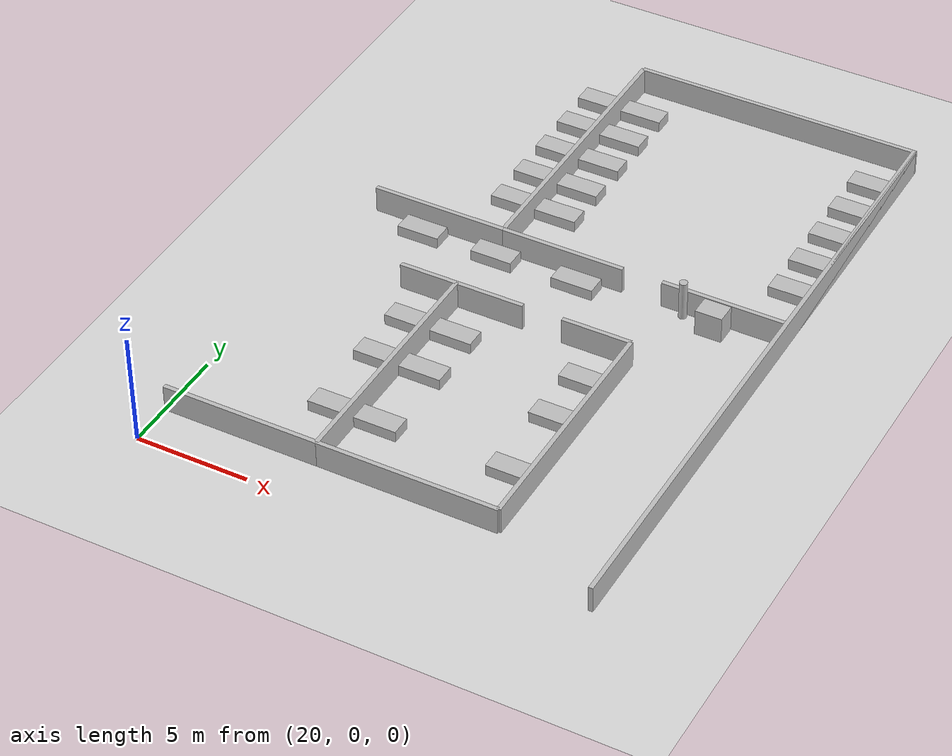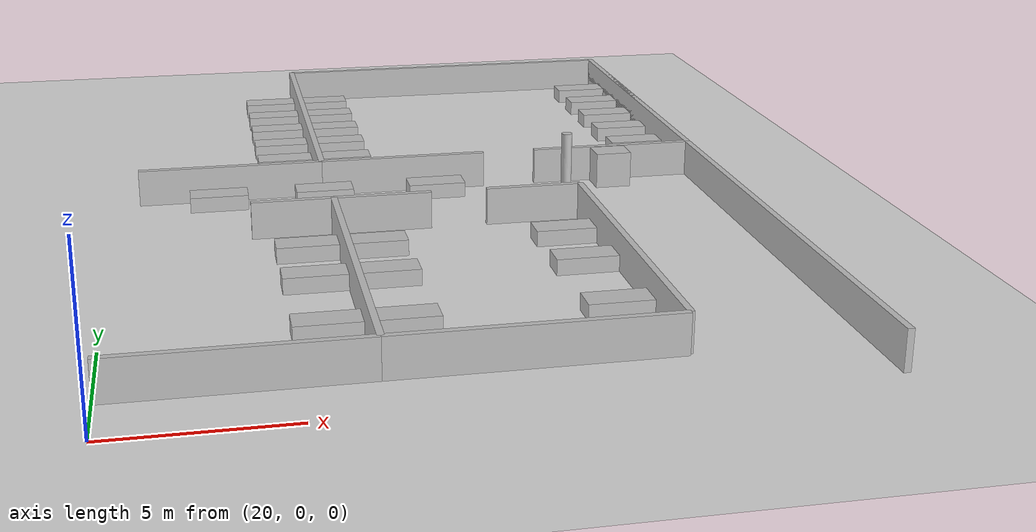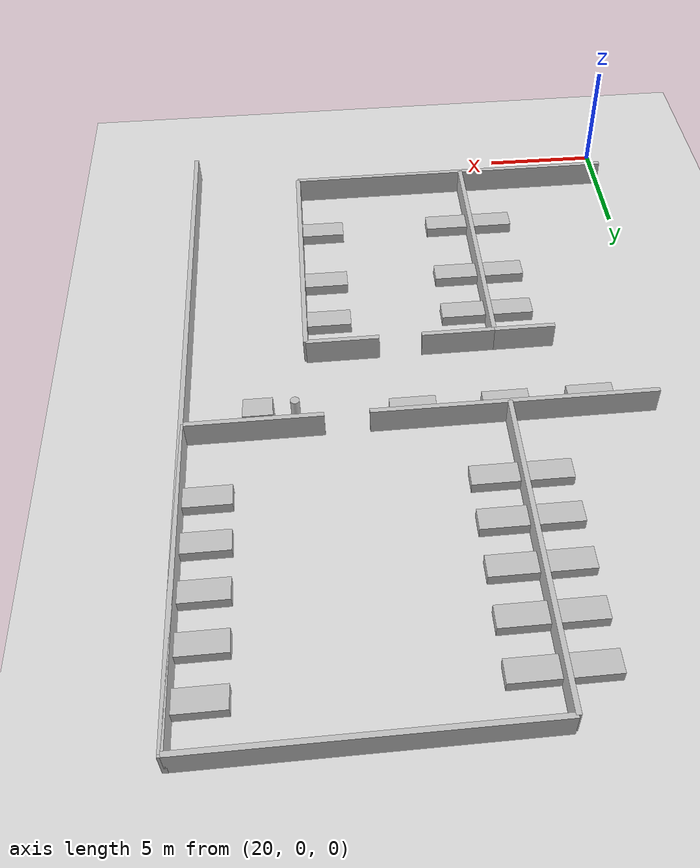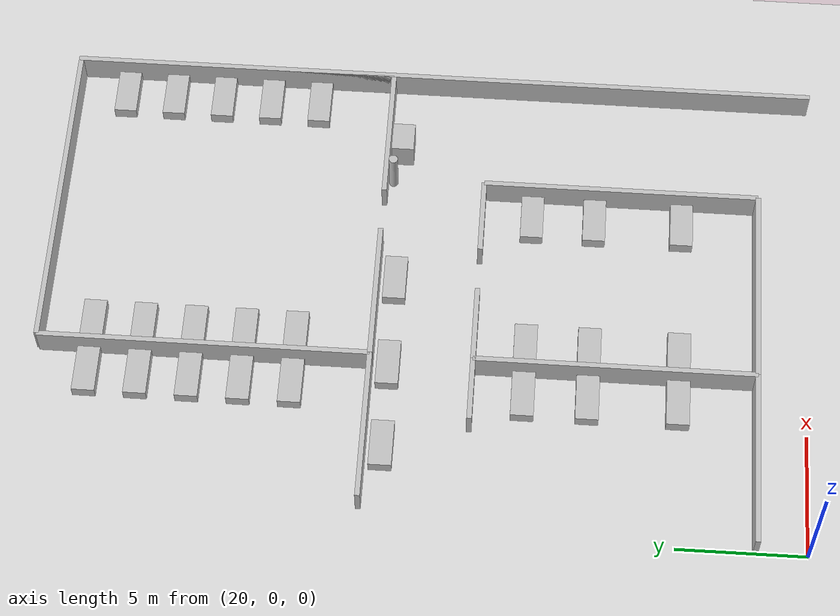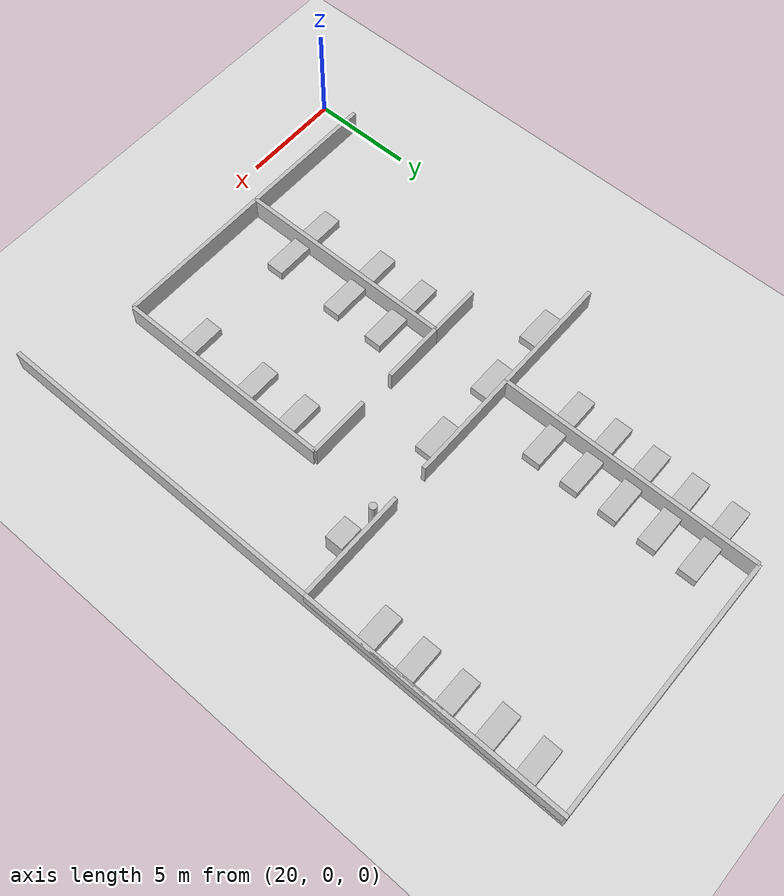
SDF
<sdf version="1.9">
 <world name="hospital">
  <model name="ground_plane">
   <static>true</static>
   <link name="link">
    <collision name="collision">
     <geometry><plane><normal>0 0 1</normal><size>200 200</size></plane></geometry>
    </collision>
    <visual name="visual">
     <pose>0 0 -0.03 0 0 0</pose>
     <cast_shadows>false</cast_shadows>
     <geometry><plane><normal>0 0 1</normal><size>200 200</size></plane></geometry>
     <material>
      <ambient>0.425 0.425 0.425 1.0</ambient>
      <diffuse>0.850 0.850 0.850 1.0</diffuse>
      <specular>0.14 0.14 0.14 1</specular>
      <emissive>0.000 0.000 0.000 1</emissive>
     </material>
    </visual>
   </link>
  </model>
  <model name="wall_3">
   <static>true</static>
   <pose>40.0 15.0 0.6 0 0 0</pose>
   <link name="link">
    <collision name="c">
     <geometry><box><size>0.20000000000000284 30.200000000000003 1.2</size></box></geometry>
    </collision>
    <visual name="v">
     <geometry><box><size>0.20000000000000284 30.200000000000003 1.2</size></box></geometry>
     <material>
      <ambient>0.375 0.375 0.375 1.0</ambient>
      <diffuse>0.750 0.750 0.750 1.0</diffuse>
      <specular>0.14 0.14 0.14 1</specular>
      <emissive>0.000 0.000 0.000 1</emissive>
     </material>
    </visual>
   </link>
  </model>
  <model name="wall_10">
   <static>true</static>
   <pose>23.95 17.0 0.6 0 0 0</pose>
   <link name="link">
    <collision name="c">
     <geometry><box><size>6.100000000000001 0.20000000000000284 1.2</size></box></geometry>
    </collision>
    <visual name="v">
     <geometry><box><size>6.100000000000001 0.20000000000000284 1.2</size></box></geometry>
     <material>
      <ambient>0.375 0.375 0.375 1.0</ambient>
      <diffuse>0.750 0.750 0.750 1.0</diffuse>
      <specular>0.14 0.14 0.14 1</specular>
      <emissive>0.000 0.000 0.000 1</emissive>
     </material>
    </visual>
   </link>
  </model>
  <model name="wall_13">
   <static>true</static>
   <pose>27.0 23.5 0.6 0 0 0</pose>
   <link name="link">
    <collision name="c"><geometry><box><size>0.20000000000000284 13.0 1.2</size></box></geometry></collision>
    <visual name="v">
     <geometry><box><size>0.20000000000000284 13.0 1.2</size></box></geometry>
     <material>
      <ambient>0.375 0.375 0.375 1.0</ambient>
      <diffuse>0.750 0.750 0.750 1.0</diffuse>
      <specular>0.14 0.14 0.14 1</specular>
      <emissive>0.000 0.000 0.000 1</emissive>
     </material>
    </visual>
   </link>
  </model>
  <model name="wall_14">
   <static>true</static>
   <pose>29.8 17.0 0.6 0 0 0</pose>
   <link name="link">
    <collision name="c">
     <geometry><box><size>5.600000000000001 0.20000000000000284 1.2</size></box></geometry>
    </collision>
    <visual name="v">
     <geometry><box><size>5.600000000000001 0.20000000000000284 1.2</size></box></geometry>
     <material>
      <ambient>0.375 0.375 0.375 1.0</ambient>
      <diffuse>0.750 0.750 0.750 1.0</diffuse>
      <specular>0.14 0.14 0.14 1</specular>
      <emissive>0.000 0.000 0.000 1</emissive>
     </material>
    </visual>
   </link>
  </model>
  <model name="wall_15">
   <static>true</static>
   <pose>37.2 17.0 0.6 0 0 0</pose>
   <link name="link">
    <collision name="c">
     <geometry><box><size>5.600000000000001 0.20000000000000284 1.2</size></box></geometry>
    </collision>
    <visual name="v">
     <geometry><box><size>5.600000000000001 0.20000000000000284 1.2</size></box></geometry>
     <material>
      <ambient>0.375 0.375 0.375 1.0</ambient>
      <diffuse>0.750 0.750 0.750 1.0</diffuse>
      <specular>0.14 0.14 0.14 1</specular>
      <emissive>0.000 0.000 0.000 1</emissive>
     </material>
    </visual>
   </link>
  </model>
  <model name="wall_16">
   <static>true</static>
   <pose>33.5 30.0 0.6 0 0 0</pose>
   <link name="link">
    <collision name="c"><geometry><box><size>13.0 0.20000000000000284 1.2</size></box></geometry></collision>
    <visual name="v">
     <geometry><box><size>13.0 0.20000000000000284 1.2</size></box></geometry>
     <material>
      <ambient>0.375 0.375 0.375 1.0</ambient>
      <diffuse>0.750 0.750 0.750 1.0</diffuse>
      <specular>0.14 0.14 0.14 1</specular>
      <emissive>0.000 0.000 0.000 1</emissive>
     </material>
    </visual>
   </link>
  </model>
  <model name="wall_17">
   <static>true</static>
   <pose>27.0 23.5 0.6 0 0 0</pose>
   <link name="link">
    <collision name="c"><geometry><box><size>0.20000000000000284 13.0 1.2</size></box></geometry></collision>
    <visual name="v">
     <geometry><box><size>0.20000000000000284 13.0 1.2</size></box></geometry>
     <material>
      <ambient>0.375 0.375 0.375 1.0</ambient>
      <diffuse>0.750 0.750 0.750 1.0</diffuse>
      <specular>0.14 0.14 0.14 1</specular>
      <emissive>0.000 0.000 0.000 1</emissive>
     </material>
    </visual>
   </link>
  </model>
  <model name="wall_18">
   <static>true</static>
   <pose>40.0 23.5 0.6 0 0 0</pose>
   <link name="link">
    <collision name="c"><geometry><box><size>0.20000000000000284 13.0 1.2</size></box></geometry></collision>
    <visual name="v">
     <geometry><box><size>0.20000000000000284 13.0 1.2</size></box></geometry>
     <material>
      <ambient>0.375 0.375 0.375 1.0</ambient>
      <diffuse>0.750 0.750 0.750 1.0</diffuse>
      <specular>0.14 0.14 0.14 1</specular>
      <emissive>0.000 0.000 0.000 1</emissive>
     </material>
    </visual>
   </link>
  </model>
  <model name="wall_30">
   <static>true</static>
   <pose>23.5 2.0 0.6 0 0 0</pose>
   <link name="link">
    <collision name="c"><geometry><box><size>7.0 0.20000000000000018 1.2</size></box></geometry></collision>
    <visual name="v">
     <geometry><box><size>7.0 0.20000000000000018 1.2</size></box></geometry>
     <material>
      <ambient>0.375 0.375 0.375 1.0</ambient>
      <diffuse>0.750 0.750 0.750 1.0</diffuse>
      <specular>0.14 0.14 0.14 1</specular>
      <emissive>0.000 0.000 0.000 1</emissive>
     </material>
    </visual>
   </link>
  </model>
  <model name="wall_32">
   <static>true</static>
   <pose>25.7 13.0 0.6 0 0 0</pose>
   <link name="link">
    <collision name="c">
     <geometry><box><size>2.6000000000000014 0.1999999999999993 1.2</size></box></geometry>
    </collision>
    <visual name="v">
     <geometry><box><size>2.6000000000000014 0.1999999999999993 1.2</size></box></geometry>
     <material>
      <ambient>0.375 0.375 0.375 1.0</ambient>
      <diffuse>0.750 0.750 0.750 1.0</diffuse>
      <specular>0.14 0.14 0.14 1</specular>
      <emissive>0.000 0.000 0.000 1</emissive>
     </material>
    </visual>
   </link>
  </model>
  <model name="wall_34">
   <static>true</static>
   <pose>27.0 7.5 0.6 0 0 0</pose>
   <link name="link">
    <collision name="c"><geometry><box><size>0.20000000000000284 11.0 1.2</size></box></geometry></collision>
    <visual name="v">
     <geometry><box><size>0.20000000000000284 11.0 1.2</size></box></geometry>
     <material>
      <ambient>0.375 0.375 0.375 1.0</ambient>
      <diffuse>0.750 0.750 0.750 1.0</diffuse>
      <specular>0.14 0.14 0.14 1</specular>
      <emissive>0.000 0.000 0.000 1</emissive>
     </material>
    </visual>
   </link>
  </model>
  <model name="wall_35">
   <static>true</static>
   <pose>31.0 2.0 0.6 0 0 0</pose>
   <link name="link">
    <collision name="c"><geometry><box><size>8.0 0.20000000000000018 1.2</size></box></geometry></collision>
    <visual name="v">
     <geometry><box><size>8.0 0.20000000000000018 1.2</size></box></geometry>
     <material>
      <ambient>0.375 0.375 0.375 1.0</ambient>
      <diffuse>0.750 0.750 0.750 1.0</diffuse>
      <specular>0.14 0.14 0.14 1</specular>
      <emissive>0.000 0.000 0.000 1</emissive>
     </material>
    </visual>
   </link>
  </model>
  <model name="wall_36">
   <static>true</static>
   <pose>28.55 13.0 0.6 0 0 0</pose>
   <link name="link">
    <collision name="c">
     <geometry><box><size>3.1000000000000014 0.1999999999999993 1.2</size></box></geometry>
    </collision>
    <visual name="v">
     <geometry><box><size>3.1000000000000014 0.1999999999999993 1.2</size></box></geometry>
     <material>
      <ambient>0.375 0.375 0.375 1.0</ambient>
      <diffuse>0.750 0.750 0.750 1.0</diffuse>
      <specular>0.14 0.14 0.14 1</specular>
      <emissive>0.000 0.000 0.000 1</emissive>
     </material>
    </visual>
   </link>
  </model>
  <model name="wall_37">
   <static>true</static>
   <pose>33.45 13.0 0.6 0 0 0</pose>
   <link name="link">
    <collision name="c">
     <geometry><box><size>3.1000000000000014 0.1999999999999993 1.2</size></box></geometry>
    </collision>
    <visual name="v">
     <geometry><box><size>3.1000000000000014 0.1999999999999993 1.2</size></box></geometry>
     <material>
      <ambient>0.375 0.375 0.375 1.0</ambient>
      <diffuse>0.750 0.750 0.750 1.0</diffuse>
      <specular>0.14 0.14 0.14 1</specular>
      <emissive>0.000 0.000 0.000 1</emissive>
     </material>
    </visual>
   </link>
  </model>
  <model name="wall_38">
   <static>true</static>
   <pose>27.0 7.5 0.6 0 0 0</pose>
   <link name="link">
    <collision name="c"><geometry><box><size>0.20000000000000284 11.0 1.2</size></box></geometry></collision>
    <visual name="v">
     <geometry><box><size>0.20000000000000284 11.0 1.2</size></box></geometry>
     <material>
      <ambient>0.375 0.375 0.375 1.0</ambient>
      <diffuse>0.750 0.750 0.750 1.0</diffuse>
      <specular>0.14 0.14 0.14 1</specular>
      <emissive>0.000 0.000 0.000 1</emissive>
     </material>
    </visual>
   </link>
  </model>
  <model name="wall_39">
   <static>true</static>
   <pose>35.0 7.5 0.6 0 0 0</pose>
   <link name="link">
    <collision name="c"><geometry><box><size>0.20000000000000284 11.0 1.2</size></box></geometry></collision>
    <visual name="v">
     <geometry><box><size>0.20000000000000284 11.0 1.2</size></box></geometry>
     <material>
      <ambient>0.375 0.375 0.375 1.0</ambient>
      <diffuse>0.750 0.750 0.750 1.0</diffuse>
      <specular>0.14 0.14 0.14 1</specular>
      <emissive>0.000 0.000 0.000 1</emissive>
     </material>
    </visual>
   </link>
  </model>
  <model name="bed_7">
   <static>true</static>
   <pose>25.95 20.0 0.25 0 0 0</pose>
   <link name="link">
    <collision name="c">
     <geometry><box><size>1.8999999999999986 0.8999999999999986 0.5</size></box></geometry>
    </collision>
    <visual name="v">
     <geometry><box><size>1.8999999999999986 0.8999999999999986 0.5</size></box></geometry>
     <material>
      <ambient>0.375 0.375 0.375 1.0</ambient>
      <diffuse>0.750 0.750 0.750 1.0</diffuse>
      <specular>0.14 0.14 0.14 1</specular>
      <emissive>0.000 0.000 0.000 1</emissive>
     </material>
    </visual>
   </link>
  </model>
  <model name="bed_9">
   <static>true</static>
   <pose>25.95 24.0 0.25 0 0 0</pose>
   <link name="link">
    <collision name="c">
     <geometry><box><size>1.8999999999999986 0.8999999999999986 0.5</size></box></geometry>
    </collision>
    <visual name="v">
     <geometry><box><size>1.8999999999999986 0.8999999999999986 0.5</size></box></geometry>
     <material>
      <ambient>0.375 0.375 0.375 1.0</ambient>
      <diffuse>0.750 0.750 0.750 1.0</diffuse>
      <specular>0.14 0.14 0.14 1</specular>
      <emissive>0.000 0.000 0.000 1</emissive>
     </material>
    </visual>
   </link>
  </model>
  <model name="bed_11">
   <static>true</static>
   <pose>25.95 28.0 0.25 0 0 0</pose>
   <link name="link">
    <collision name="c">
     <geometry><box><size>1.8999999999999986 0.8999999999999986 0.5</size></box></geometry>
    </collision>
    <visual name="v">
     <geometry><box><size>1.8999999999999986 0.8999999999999986 0.5</size></box></geometry>
     <material>
      <ambient>0.375 0.375 0.375 1.0</ambient>
      <diffuse>0.750 0.750 0.750 1.0</diffuse>
      <specular>0.14 0.14 0.14 1</specular>
      <emissive>0.000 0.000 0.000 1</emissive>
     </material>
    </visual>
   </link>
  </model>
  <model name="bed_12">
   <static>true</static>
   <pose>28.05 20.0 0.25 0 0 0</pose>
   <link name="link">
    <collision name="c">
     <geometry><box><size>1.8999999999999986 0.8999999999999986 0.5</size></box></geometry>
    </collision>
    <visual name="v">
     <geometry><box><size>1.8999999999999986 0.8999999999999986 0.5</size></box></geometry>
     <material>
      <ambient>0.375 0.375 0.375 1.0</ambient>
      <diffuse>0.750 0.750 0.750 1.0</diffuse>
      <specular>0.14 0.14 0.14 1</specular>
      <emissive>0.000 0.000 0.000 1</emissive>
     </material>
    </visual>
   </link>
  </model>
  <model name="bed_13">
   <static>true</static>
   <pose>38.95 20.0 0.25 0 0 0</pose>
   <link name="link">
    <collision name="c">
     <geometry><box><size>1.8999999999999986 0.8999999999999986 0.5</size></box></geometry>
    </collision>
    <visual name="v">
     <geometry><box><size>1.8999999999999986 0.8999999999999986 0.5</size></box></geometry>
     <material>
      <ambient>0.375 0.375 0.375 1.0</ambient>
      <diffuse>0.750 0.750 0.750 1.0</diffuse>
      <specular>0.14 0.14 0.14 1</specular>
      <emissive>0.000 0.000 0.000 1</emissive>
     </material>
    </visual>
   </link>
  </model>
  <model name="bed_14">
   <static>true</static>
   <pose>28.05 24.0 0.25 0 0 0</pose>
   <link name="link">
    <collision name="c">
     <geometry><box><size>1.8999999999999986 0.8999999999999986 0.5</size></box></geometry>
    </collision>
    <visual name="v">
     <geometry><box><size>1.8999999999999986 0.8999999999999986 0.5</size></box></geometry>
     <material>
      <ambient>0.375 0.375 0.375 1.0</ambient>
      <diffuse>0.750 0.750 0.750 1.0</diffuse>
      <specular>0.14 0.14 0.14 1</specular>
      <emissive>0.000 0.000 0.000 1</emissive>
     </material>
    </visual>
   </link>
  </model>
  <model name="bed_15">
   <static>true</static>
   <pose>38.95 24.0 0.25 0 0 0</pose>
   <link name="link">
    <collision name="c">
     <geometry><box><size>1.8999999999999986 0.8999999999999986 0.5</size></box></geometry>
    </collision>
    <visual name="v">
     <geometry><box><size>1.8999999999999986 0.8999999999999986 0.5</size></box></geometry>
     <material>
      <ambient>0.375 0.375 0.375 1.0</ambient>
      <diffuse>0.750 0.750 0.750 1.0</diffuse>
      <specular>0.14 0.14 0.14 1</specular>
      <emissive>0.000 0.000 0.000 1</emissive>
     </material>
    </visual>
   </link>
  </model>
  <model name="bed_16">
   <static>true</static>
   <pose>28.05 28.0 0.25 0 0 0</pose>
   <link name="link">
    <collision name="c">
     <geometry><box><size>1.8999999999999986 0.8999999999999986 0.5</size></box></geometry>
    </collision>
    <visual name="v">
     <geometry><box><size>1.8999999999999986 0.8999999999999986 0.5</size></box></geometry>
     <material>
      <ambient>0.375 0.375 0.375 1.0</ambient>
      <diffuse>0.750 0.750 0.750 1.0</diffuse>
      <specular>0.14 0.14 0.14 1</specular>
      <emissive>0.000 0.000 0.000 1</emissive>
     </material>
    </visual>
   </link>
  </model>
  <model name="bed_17">
   <static>true</static>
   <pose>38.95 28.0 0.25 0 0 0</pose>
   <link name="link">
    <collision name="c">
     <geometry><box><size>1.8999999999999986 0.8999999999999986 0.5</size></box></geometry>
    </collision>
    <visual name="v">
     <geometry><box><size>1.8999999999999986 0.8999999999999986 0.5</size></box></geometry>
     <material>
      <ambient>0.375 0.375 0.375 1.0</ambient>
      <diffuse>0.750 0.750 0.750 1.0</diffuse>
      <specular>0.14 0.14 0.14 1</specular>
      <emissive>0.000 0.000 0.000 1</emissive>
     </material>
    </visual>
   </link>
  </model>
  <model name="bed_19">
   <static>true</static>
   <pose>25.95 5.0 0.25 0 0 0</pose>
   <link name="link">
    <collision name="c">
     <geometry><box><size>1.8999999999999986 0.9000000000000004 0.5</size></box></geometry>
    </collision>
    <visual name="v">
     <geometry><box><size>1.8999999999999986 0.9000000000000004 0.5</size></box></geometry>
     <material>
      <ambient>0.375 0.375 0.375 1.0</ambient>
      <diffuse>0.750 0.750 0.750 1.0</diffuse>
      <specular>0.14 0.14 0.14 1</specular>
      <emissive>0.000 0.000 0.000 1</emissive>
     </material>
    </visual>
   </link>
  </model>
  <model name="bed_21">
   <static>true</static>
   <pose>25.95 8.5 0.25 0 0 0</pose>
   <link name="link">
    <collision name="c">
     <geometry><box><size>1.8999999999999986 0.8999999999999986 0.5</size></box></geometry>
    </collision>
    <visual name="v">
     <geometry><box><size>1.8999999999999986 0.8999999999999986 0.5</size></box></geometry>
     <material>
      <ambient>0.375 0.375 0.375 1.0</ambient>
      <diffuse>0.750 0.750 0.750 1.0</diffuse>
      <specular>0.14 0.14 0.14 1</specular>
      <emissive>0.000 0.000 0.000 1</emissive>
     </material>
    </visual>
   </link>
  </model>
  <model name="bed_22">
   <static>true</static>
   <pose>28.05 5.0 0.25 0 0 0</pose>
   <link name="link">
    <collision name="c">
     <geometry><box><size>1.8999999999999986 0.9000000000000004 0.5</size></box></geometry>
    </collision>
    <visual name="v">
     <geometry><box><size>1.8999999999999986 0.9000000000000004 0.5</size></box></geometry>
     <material>
      <ambient>0.375 0.375 0.375 1.0</ambient>
      <diffuse>0.750 0.750 0.750 1.0</diffuse>
      <specular>0.14 0.14 0.14 1</specular>
      <emissive>0.000 0.000 0.000 1</emissive>
     </material>
    </visual>
   </link>
  </model>
  <model name="bed_23">
   <static>true</static>
   <pose>33.95 5.0 0.25 0 0 0</pose>
   <link name="link">
    <collision name="c">
     <geometry><box><size>1.8999999999999986 0.9000000000000004 0.5</size></box></geometry>
    </collision>
    <visual name="v">
     <geometry><box><size>1.8999999999999986 0.9000000000000004 0.5</size></box></geometry>
     <material>
      <ambient>0.375 0.375 0.375 1.0</ambient>
      <diffuse>0.750 0.750 0.750 1.0</diffuse>
      <specular>0.14 0.14 0.14 1</specular>
      <emissive>0.000 0.000 0.000 1</emissive>
     </material>
    </visual>
   </link>
  </model>
  <model name="bed_24">
   <static>true</static>
   <pose>28.05 8.5 0.25 0 0 0</pose>
   <link name="link">
    <collision name="c">
     <geometry><box><size>1.8999999999999986 0.8999999999999986 0.5</size></box></geometry>
    </collision>
    <visual name="v">
     <geometry><box><size>1.8999999999999986 0.8999999999999986 0.5</size></box></geometry>
     <material>
      <ambient>0.375 0.375 0.375 1.0</ambient>
      <diffuse>0.750 0.750 0.750 1.0</diffuse>
      <specular>0.14 0.14 0.14 1</specular>
      <emissive>0.000 0.000 0.000 1</emissive>
     </material>
    </visual>
   </link>
  </model>
  <model name="bed_25">
   <static>true</static>
   <pose>33.95 8.5 0.25 0 0 0</pose>
   <link name="link">
    <collision name="c">
     <geometry><box><size>1.8999999999999986 0.8999999999999986 0.5</size></box></geometry>
    </collision>
    <visual name="v">
     <geometry><box><size>1.8999999999999986 0.8999999999999986 0.5</size></box></geometry>
     <material>
      <ambient>0.375 0.375 0.375 1.0</ambient>
      <diffuse>0.750 0.750 0.750 1.0</diffuse>
      <specular>0.14 0.14 0.14 1</specular>
      <emissive>0.000 0.000 0.000 1</emissive>
     </material>
    </visual>
   </link>
  </model>
  <model name="bed_27">
   <static>true</static>
   <pose>23.5 16.3 0.25 0 0 0</pose>
   <link name="link">
    <collision name="c">
     <geometry><box><size>1.8999999999999986 0.9000000000000004 0.5</size></box></geometry>
    </collision>
    <visual name="v">
     <geometry><box><size>1.8999999999999986 0.9000000000000004 0.5</size></box></geometry>
     <material>
      <ambient>0.375 0.375 0.375 1.0</ambient>
      <diffuse>0.750 0.750 0.750 1.0</diffuse>
      <specular>0.14 0.14 0.14 1</specular>
      <emissive>0.000 0.000 0.000 1</emissive>
     </material>
    </visual>
   </link>
  </model>
  <model name="bed_30">
   <static>true</static>
   <pose>27.0 16.3 0.25 0 0 0</pose>
   <link name="link">
    <collision name="c">
     <geometry><box><size>1.8999999999999986 0.9000000000000004 0.5</size></box></geometry>
    </collision>
    <visual name="v">
     <geometry><box><size>1.8999999999999986 0.9000000000000004 0.5</size></box></geometry>
     <material>
      <ambient>0.375 0.375 0.375 1.0</ambient>
      <diffuse>0.750 0.750 0.750 1.0</diffuse>
      <specular>0.14 0.14 0.14 1</specular>
      <emissive>0.000 0.000 0.000 1</emissive>
     </material>
    </visual>
   </link>
  </model>
  <model name="bed_31">
   <static>true</static>
   <pose>30.8 16.3 0.25 0 0 0</pose>
   <link name="link">
    <collision name="c">
     <geometry><box><size>1.8999999999999986 0.9000000000000004 0.5</size></box></geometry>
    </collision>
    <visual name="v">
     <geometry><box><size>1.8999999999999986 0.9000000000000004 0.5</size></box></geometry>
     <material>
      <ambient>0.375 0.375 0.375 1.0</ambient>
      <diffuse>0.750 0.750 0.750 1.0</diffuse>
      <specular>0.14 0.14 0.14 1</specular>
      <emissive>0.000 0.000 0.000 1</emissive>
     </material>
    </visual>
   </link>
  </model>
  <model name="bed_37">
   <static>true</static>
   <pose>25.95 22.0 0.25 0 0 0</pose>
   <link name="link">
    <collision name="c">
     <geometry><box><size>1.8999999999999986 0.8999999999999986 0.5</size></box></geometry>
    </collision>
    <visual name="v">
     <geometry><box><size>1.8999999999999986 0.8999999999999986 0.5</size></box></geometry>
     <material>
      <ambient>0.375 0.375 0.375 1.0</ambient>
      <diffuse>0.750 0.750 0.750 1.0</diffuse>
      <specular>0.14 0.14 0.14 1</specular>
      <emissive>0.000 0.000 0.000 1</emissive>
     </material>
    </visual>
   </link>
  </model>
  <model name="bed_39">
   <static>true</static>
   <pose>25.95 26.0 0.25 0 0 0</pose>
   <link name="link">
    <collision name="c">
     <geometry><box><size>1.8999999999999986 0.8999999999999986 0.5</size></box></geometry>
    </collision>
    <visual name="v">
     <geometry><box><size>1.8999999999999986 0.8999999999999986 0.5</size></box></geometry>
     <material>
      <ambient>0.375 0.375 0.375 1.0</ambient>
      <diffuse>0.750 0.750 0.750 1.0</diffuse>
      <specular>0.14 0.14 0.14 1</specular>
      <emissive>0.000 0.000 0.000 1</emissive>
     </material>
    </visual>
   </link>
  </model>
  <model name="bed_40">
   <static>true</static>
   <pose>28.05 22.0 0.25 0 0 0</pose>
   <link name="link">
    <collision name="c">
     <geometry><box><size>1.8999999999999986 0.8999999999999986 0.5</size></box></geometry>
    </collision>
    <visual name="v">
     <geometry><box><size>1.8999999999999986 0.8999999999999986 0.5</size></box></geometry>
     <material>
      <ambient>0.375 0.375 0.375 1.0</ambient>
      <diffuse>0.750 0.750 0.750 1.0</diffuse>
      <specular>0.14 0.14 0.14 1</specular>
      <emissive>0.000 0.000 0.000 1</emissive>
     </material>
    </visual>
   </link>
  </model>
  <model name="bed_41">
   <static>true</static>
   <pose>38.95 22.0 0.25 0 0 0</pose>
   <link name="link">
    <collision name="c">
     <geometry><box><size>1.8999999999999986 0.8999999999999986 0.5</size></box></geometry>
    </collision>
    <visual name="v">
     <geometry><box><size>1.8999999999999986 0.8999999999999986 0.5</size></box></geometry>
     <material>
      <ambient>0.375 0.375 0.375 1.0</ambient>
      <diffuse>0.750 0.750 0.750 1.0</diffuse>
      <specular>0.14 0.14 0.14 1</specular>
      <emissive>0.000 0.000 0.000 1</emissive>
     </material>
    </visual>
   </link>
  </model>
  <model name="bed_42">
   <static>true</static>
   <pose>28.05 26.0 0.25 0 0 0</pose>
   <link name="link">
    <collision name="c">
     <geometry><box><size>1.8999999999999986 0.8999999999999986 0.5</size></box></geometry>
    </collision>
    <visual name="v">
     <geometry><box><size>1.8999999999999986 0.8999999999999986 0.5</size></box></geometry>
     <material>
      <ambient>0.375 0.375 0.375 1.0</ambient>
      <diffuse>0.750 0.750 0.750 1.0</diffuse>
      <specular>0.14 0.14 0.14 1</specular>
      <emissive>0.000 0.000 0.000 1</emissive>
     </material>
    </visual>
   </link>
  </model>
  <model name="bed_43">
   <static>true</static>
   <pose>38.95 26.0 0.25 0 0 0</pose>
   <link name="link">
    <collision name="c">
     <geometry><box><size>1.8999999999999986 0.8999999999999986 0.5</size></box></geometry>
    </collision>
    <visual name="v">
     <geometry><box><size>1.8999999999999986 0.8999999999999986 0.5</size></box></geometry>
     <material>
      <ambient>0.375 0.375 0.375 1.0</ambient>
      <diffuse>0.750 0.750 0.750 1.0</diffuse>
      <specular>0.14 0.14 0.14 1</specular>
      <emissive>0.000 0.000 0.000 1</emissive>
     </material>
    </visual>
   </link>
  </model>
  <model name="bed_45">
   <static>true</static>
   <pose>25.95 11.0 0.25 0 0 0</pose>
   <link name="link">
    <collision name="c">
     <geometry><box><size>1.8999999999999986 0.8999999999999986 0.5</size></box></geometry>
    </collision>
    <visual name="v">
     <geometry><box><size>1.8999999999999986 0.8999999999999986 0.5</size></box></geometry>
     <material>
      <ambient>0.375 0.375 0.375 1.0</ambient>
      <diffuse>0.750 0.750 0.750 1.0</diffuse>
      <specular>0.14 0.14 0.14 1</specular>
      <emissive>0.000 0.000 0.000 1</emissive>
     </material>
    </visual>
   </link>
  </model>
  <model name="bed_46">
   <static>true</static>
   <pose>28.05 11.0 0.25 0 0 0</pose>
   <link name="link">
    <collision name="c">
     <geometry><box><size>1.8999999999999986 0.8999999999999986 0.5</size></box></geometry>
    </collision>
    <visual name="v">
     <geometry><box><size>1.8999999999999986 0.8999999999999986 0.5</size></box></geometry>
     <material>
      <ambient>0.375 0.375 0.375 1.0</ambient>
      <diffuse>0.750 0.750 0.750 1.0</diffuse>
      <specular>0.14 0.14 0.14 1</specular>
      <emissive>0.000 0.000 0.000 1</emissive>
     </material>
    </visual>
   </link>
  </model>
  <model name="bed_47">
   <static>true</static>
   <pose>33.95 11.0 0.25 0 0 0</pose>
   <link name="link">
    <collision name="c">
     <geometry><box><size>1.8999999999999986 0.8999999999999986 0.5</size></box></geometry>
    </collision>
    <visual name="v">
     <geometry><box><size>1.8999999999999986 0.8999999999999986 0.5</size></box></geometry>
     <material>
      <ambient>0.375 0.375 0.375 1.0</ambient>
      <diffuse>0.750 0.750 0.750 1.0</diffuse>
      <specular>0.14 0.14 0.14 1</specular>
      <emissive>0.000 0.000 0.000 1</emissive>
     </material>
    </visual>
   </link>
  </model>
  <model name="nurse_desk">
   <static>true</static>
   <pose>37.0 16.4 0.6 0 0 0</pose>
   <link name="link">
    <collision name="c">
     <geometry><box><size>1.2000000000000028 0.9000000000000021 1.2</size></box></geometry>
    </collision>
    <visual name="v">
     <geometry><box><size>1.2000000000000028 0.9000000000000021 1.2</size></box></geometry>
     <material>
      <ambient>0.375 0.375 0.375 1.0</ambient>
      <diffuse>0.750 0.750 0.750 1.0</diffuse>
      <specular>0.14 0.14 0.14 1</specular>
      <emissive>0.000 0.000 0.000 1</emissive>
     </material>
    </visual>
   </link>
  </model>
  <model name="person_1">
   <static>true</static>
   <pose>35.5 16.7 0.9 0 0 0</pose>
   <link name="link">
    <collision name="c">
     <geometry><cylinder><radius>0.18</radius><length>1.8</length></cylinder></geometry>
    </collision>
    <visual name="v">
     <geometry><cylinder><radius>0.18</radius><length>1.8</length></cylinder></geometry>
     <material>
      <ambient>0.375 0.375 0.375 1.0</ambient>
      <diffuse>0.750 0.750 0.750 1.0</diffuse>
      <specular>0.14 0.14 0.14 1</specular>
      <emissive>0.000 0.000 0.000 1</emissive>
     </material>
    </visual>
   </link>
  </model>
 </world>
</sdf>
